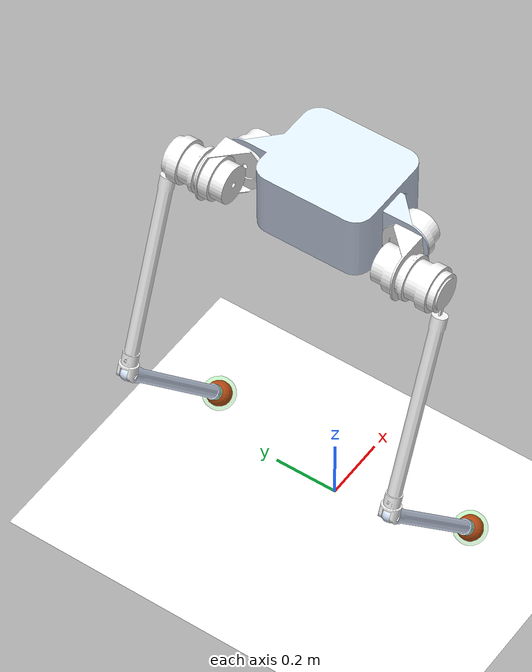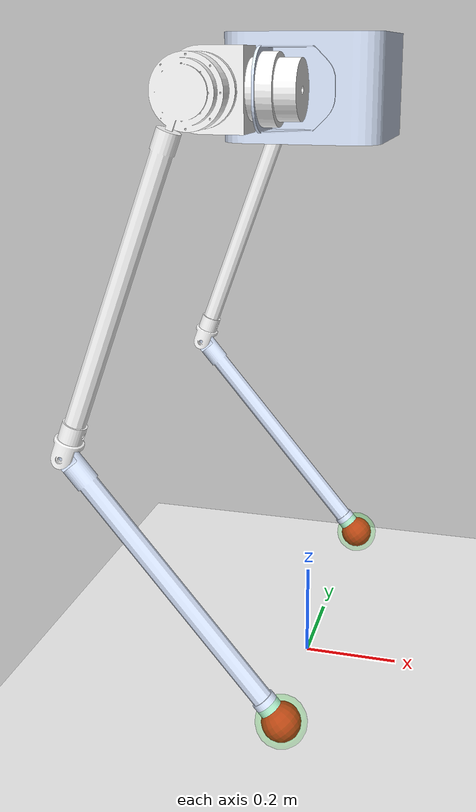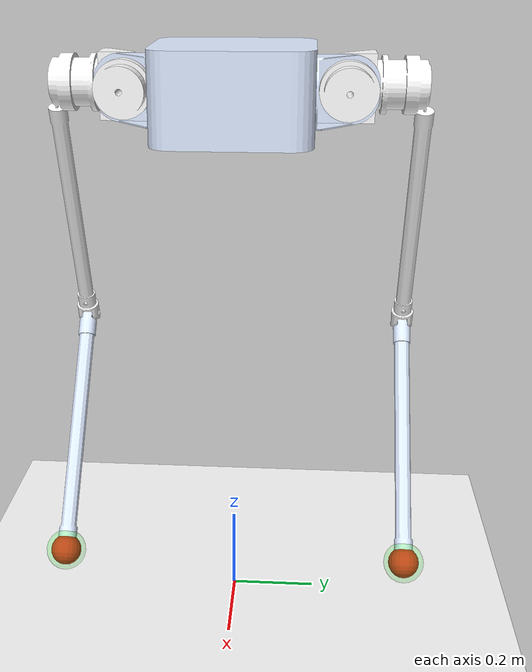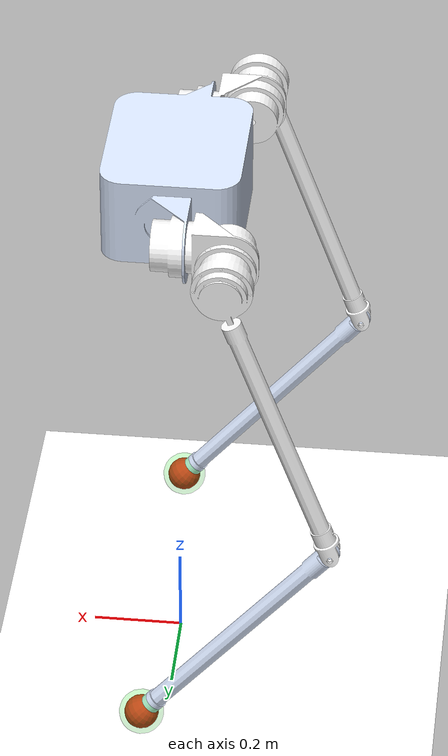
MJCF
<?xml version="1.0" encoding="utf-8"?>
<!-- SRL 实机模型 髋旋自由度放开 -->
<!-- 使用更小的电机 -->
<mujoco model="srl_real_bot_v2">
  <statistic center="0 0 1" extent="2"/>

  <!-- 修改为角度制 -->
  <compiler angle="degree" meshdir="meshes/" />

  <!--
       积分器：RK4
       时间步：0.005 (200Hz)
  -->
  <option timestep="0.005" integrator="RK4"/>

  <asset>
    <!-- 网格文件：请确保文件名与 meshes 文件夹内一致 -->
    <mesh name="base_link" file="base_link.STL"/>
    <mesh name="left_hip_x_link" file="left_hip_x_link.STL"/>
    <mesh name="left_hip_y_link" file="left_hip_y_link.STL"/>
    <mesh name="left_knee_link" file="left_knee_link.STL"/>
    <mesh name="right_hip_x_link" file="right_hip_x_link.STL"/>
    <mesh name="right_hip_y_link" file="right_hip_y_link.STL"/>
    <mesh name="right_knee_link" file="right_knee_link.STL"/>

    <material name="blue_mat" rgba="0.86 0.91 1 1"/>
    <material name="white_mat" rgba="1 1 1 1"/>
    <material name="collision_mat" rgba="0.8 0.5 0.3 0.5"/>
  </asset>

  <default>
    <!-- 关节阻尼与参考文件保持一致 -->
    <joint damping="2.0" armature="0.01" limited="true" stiffness="5" type="hinge"/>
    <!-- 几何体物理属性：高摩擦力适应足式机器人 -->
    <geom solref="0.005 1" solimp="0.9 0.95 0.001" friction="1.0 0.005 0.0001" condim="3"/>

    <default class="visual">
        <geom type="mesh" contype="0" conaffinity="0" group="2" material="blue_mat"/>
    </default>

    <default class="collision">
        <geom contype="1" conaffinity="1" group="3" material="collision_mat"/>
    </default>

    <motor ctrllimited="true" ctrlrange="-1 1"/>
  </default>

  <worldbody>
    <light pos="0 0 3" dir="0 0 -1" directional="true"/>
    <geom  pos="0 0 0" name="floor" type="plane" size="0 0 0.1" material="white_mat" rgba="0.5 0.5 0.5 1"/>

    <!-- ================= BASE LINK ================= -->
    <body name="base_link" pos="0 0 1.15" euler="0 0 0">
      <freejoint />
      <!-- Updated Mass: 10.665 -->
      <inertial pos="-0.00060591 -1.445E-17 0.1" mass="10.665" fullinertia="0.163 0.109 0.201 0 0 0"/>

      <geom mesh="base_link" class="visual"/>
      <geom type="box" size="0.15 0.05 0.08" pos="0 0 0.1" class="collision"/>

      <!-- ================= LEFT LEG CHAIN ================= -->
      <!-- Left Hip X (Roll) -->
      <!-- Euler converted: 3.1416 rad -> 180 deg -->
      <body name="left_hip_x_link" pos="-0.065 0.2475 0.1" euler="0 0 180">
        <inertial pos="-0.024642 -0.0076065 0" mass="2.092" fullinertia="0.006 0.007 0.007 0.001 0 0"/>

        <!-- Range converted: -0.2 rad -> -11.46 deg, 0.65 rad -> 37.24 deg -->
        <joint name="left_hip_x_jonit" axis="-1 0 0" range="-45.0 45.0" damping="30" stiffness="300" armature="0.1"/>

        <geom mesh="left_hip_x_link" material="white_mat" class="visual"/>
        <geom type="capsule" size="0.05" fromto="-0.05 0 0 0.05 0 0" class="collision"/>

        <!-- Left Hip Y (Pitch - Thigh) -->
        <!-- URDF: 0.0725 -0.075 0 -->
        <body name="left_hip_y_link" pos="0.0725 -0.075 0">
          <inertial pos="0.030377 -0.029787 -0.083461" mass="4.664" fullinertia="0.145 0.144 0.043 0.008 0.043 -0.022"/>

          <!-- Range converted: +/- 1.05 rad -> +/- 60.16 deg -->
          <joint name="left_hip_y_jonit" axis="0 1 0" range="-60.16 60.16" damping="25" stiffness="250" armature="0.1"/>

          <geom mesh="left_hip_y_link" material="white_mat" class="visual"/>
          <!-- 碰撞体：从HipY原点指向Knee连接点 (0.237, -0.104, -0.65) -->
          <geom type="capsule" size="0.06" fromto="0 0 0 0.237 -0.104 -0.65" class="collision"/>

          <!-- Left Knee (Pitch - Shank) -->
          <!-- URDF: 0.23761 -0.1045 -0.65284, RPY 0.698 0 1.57 -->
          <!-- 使用四元数消除旋转歧义: Roll=40deg, Yaw=90deg -->
          <body name="left_knee_link" pos="0.23761 -0.1045 -0.65284" quat="0.66446 0.24184 0.24184 0.66446">
            <inertial pos="-1.16e-7 8.95e-8 -0.312" mass="0.697" fullinertia="0.039 0.039 0.00024 0 0 0"/>

            <!-- Range converted: +/- 1.05 rad -> +/- 60.16 deg -->
            <joint name="left_knee_jonit" axis="1 0 0" range="-60.16 60.16" damping="40" stiffness="350" armature="0.1"/>

            <geom mesh="left_knee_link" class="visual"/>
            <!-- 碰撞体：小腿约长 0.6m -->
            <geom type="capsule" size="0.04" fromto="0 0 0 0 0 -0.6" class="collision"/>

            <!-- 脚底接触球 -->
            <body name="left_foot" pos="0 0 -0.645">
                <inertial pos="0 0 0" mass="0.06" diaginertia="0.0001 0.0001 0.0001"/>
                <geom name="left_foot_contact" type="sphere" size="0.038"
                      friction="0.9 0.01 0.005"
                      contype="1" conaffinity="1"
                      rgba="0.9 0.1 0.1 1"/>
                <site name="left_foot_touch" size="0.05" rgba="0 1 0 0.2"/>
            </body>

          </body>
        </body>
      </body>

      <!-- ================= RIGHT LEG CHAIN ================= -->
      <!-- Right Hip X -->
      <!-- URDF: -0.065 -0.2475 0.1, RPY 0 0 3.1416 -->
      <!-- Euler converted: 3.1416 rad -> 180 deg -->
      <body name="right_hip_x_link" pos="-0.065 -0.2475 0.1" euler="0 0 180">
        <inertial pos="-0.024642 0.0076065 0" mass="2.092" fullinertia="0.006 0.007 0.007 -0.001 0 0"/>

        <!-- Range converted: -0.2 rad -> -11.46 deg, 0.65 rad -> 37.24 deg -->
        <joint name="right_hip_x_jonit" axis="1 0 0" range="-45.0 45.0" damping="30" stiffness="300" armature="0.1"/>

        <geom mesh="right_hip_x_link" material="white_mat" class="visual"/>
        <geom type="capsule" size="0.05" fromto="-0.05 0 0 0.05 0 0" class="collision"/>

        <!-- Right Hip Y -->
        <!-- URDF: 0.0725 0.075 0 -->
        <body name="right_hip_y_link" pos="0.0725 0.075 0">
          <inertial pos="0.030377 0.029786 -0.083461" mass="4.664" fullinertia="0.145 0.144 0.043 -0.008 0.043 0.022"/>

          <!-- Range converted: +/- 1.05 rad -> +/- 60.16 deg -->
          <joint name="right_hip_y_jonit" axis="0 1 0" range="-60.16 60.16" damping="25" stiffness="250" armature="0.1"/>

          <geom mesh="right_hip_y_link" material="white_mat" class="visual"/>
          <!-- 碰撞体：指向右腿膝盖位置 (0.237, 0.104, -0.65) -->
          <geom type="capsule" size="0.06" fromto="0 0 0 0.237 0.104 -0.65" class="collision"/>

          <!-- Right Knee -->
          <!-- URDF: 0.23761 0.1045 -0.65284 -->
          <body name="right_knee_link" pos="0.23761 0.1045 -0.65284" quat="0.66446 0.24184 0.24184 0.66446">
            <inertial pos="-1.16e-7 8.92e-8 -0.312" mass="0.697" fullinertia="0.039 0.039 0.00024 0 0 0"/>

            <!-- Range converted: +/- 1.05 rad -> +/- 60.16 deg -->
            <joint name="right_knee_jonit" axis="1 0 0" range="-60.16 60.16" damping="40" stiffness="350" armature="0.1"/>

            <geom mesh="right_knee_link" class="visual"/>
            <geom type="capsule" size="0.04" fromto="0 0 0 0 0 -0.6" class="collision"/>

            <!-- 脚底接触球 -->
            <body name="right_foot" pos="0 0 -0.645">
                <inertial pos="0 0 0" mass="0.06" diaginertia="0.0001 0.0001 0.0001"/>
                <geom name="right_foot_contact" type="sphere" size="0.038"
                      friction="0.9 0.01 0.005"
                      contype="1" conaffinity="1"
                      rgba="0.9 0.1 0.1 1"/>
                <site name="right_foot_touch" size="0.05" rgba="0 1 0 0.2"/>
            </body>

          </body>
        </body>
      </body>

    </body>
  </worldbody>

  <actuator>
    <!--
      Action Space: [-1, 1]
      Max Torque: 450 Nm
    -->
    <motor name="left_hip_x_torque" joint="left_hip_x_jonit" gear="450"  />
    <motor name="left_hip_y_torque" joint="left_hip_y_jonit" gear="450"  />
    <motor name="left_knee_torque" joint="left_knee_jonit" gear="450"  />

    <motor name="right_hip_x_torque" joint="right_hip_x_jonit" gear="450"  />
    <motor name="right_hip_y_torque" joint="right_hip_y_jonit" gear="450"  />
    <motor name="right_knee_torque" joint="right_knee_jonit" gear="450"  />
  </actuator>
</mujoco>
